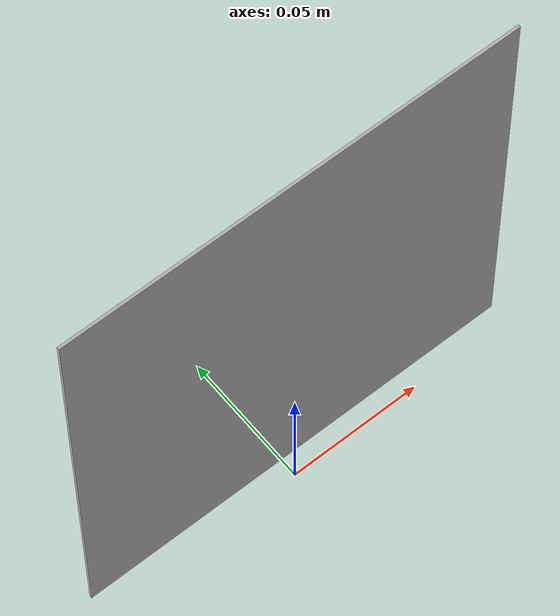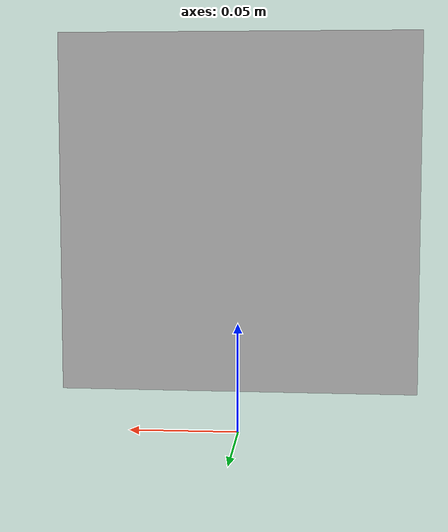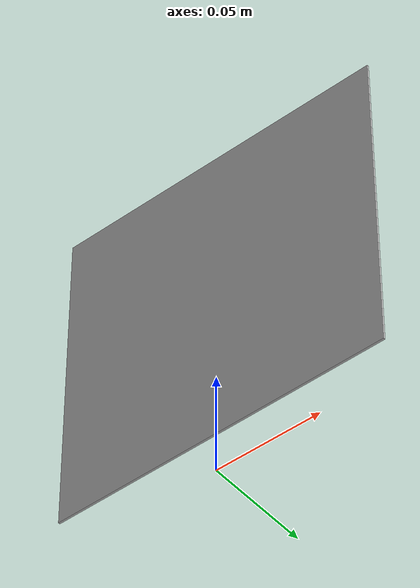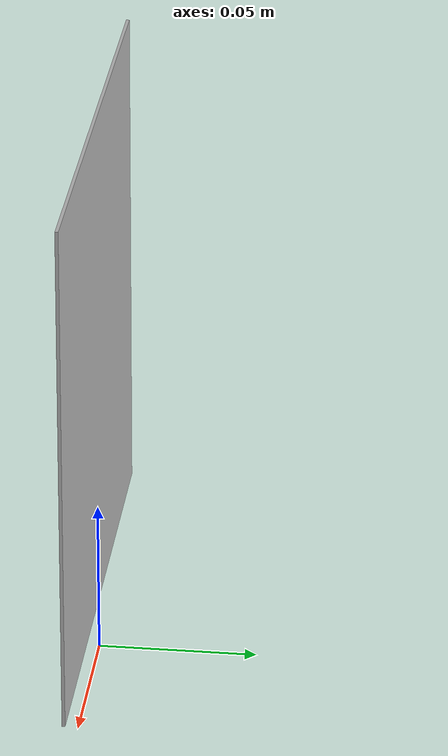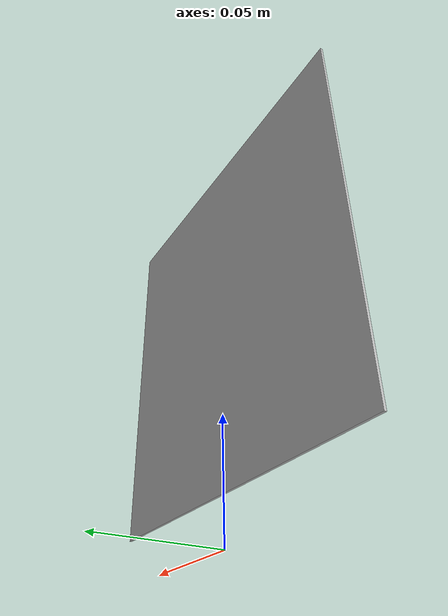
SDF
<?xml version="1.0" ?>
<sdf version="1.5">
  <model name="Tag2">
    <static>true</static>
    <link name="link">
      <pose>0 0 0.1 0 1.57 0</pose>
      <collision name="collision">
        <geometry>
          <box>
            <size>.1615 0.001 .1615</size>
          </box>
        </geometry>
      </collision>
      <visual name="visual">
        <cast_shadows>false</cast_shadows>
        <geometry>
          <box>
            <size>.1615 0.001 .1615</size>
          </box>
        </geometry>
        <material>
          <script>
            <uri>model://Tag2/materials/scripts</uri>
            <uri>model://Tag2/materials/textures</uri>
            <name>vrc/Tag2</name>
          </script>
        </material>
      </visual>
    </link>
  </model>
</sdf>
